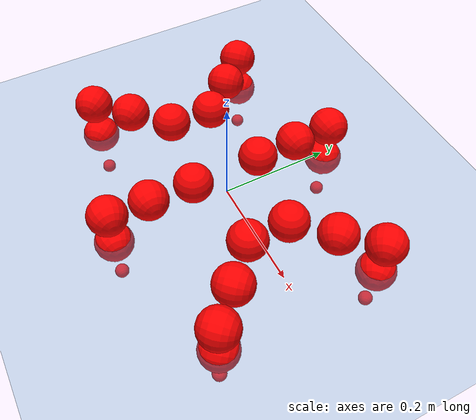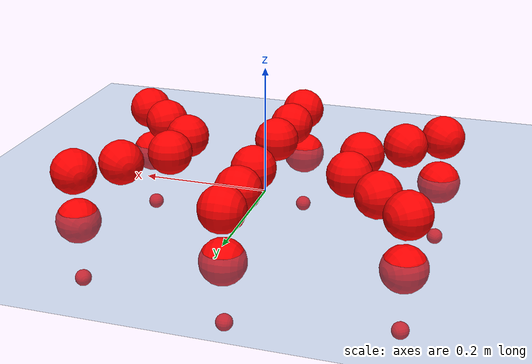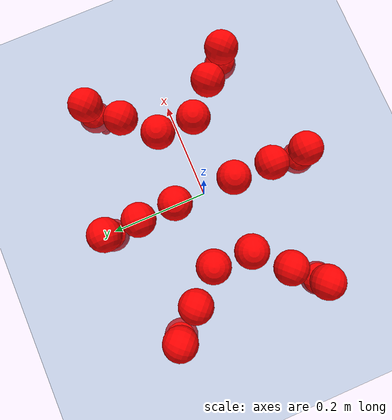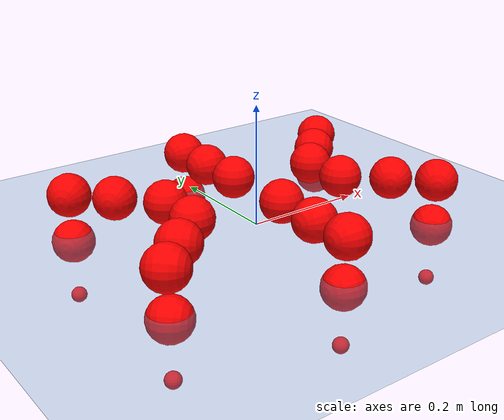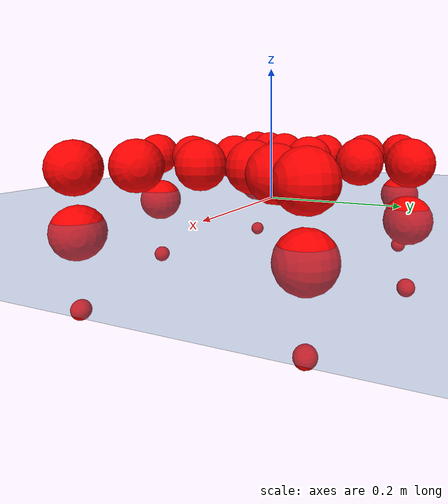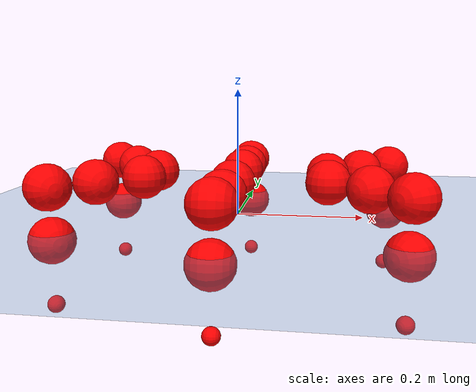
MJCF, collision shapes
<mujoco model="Golem">
  <compiler angle="radian" assetdir="assets" balanceinertia="true" inertiafromgeom="false"/>

  <option timestep="0.005" density="1.2" viscosity="2e-05"/>

  <size nkey="1"/>

  <visual>
    <quality shadowsize="8192"/>
    <map shadowclip="0.5"/>
  </visual>

  <default>
    <default class="/">
      <joint armature="0.01" damping="0.01" frictionloss="0.01"/>
      <geom contype="0" conaffinity="0" group="1" solref="-1000 -80"/>
      <site size="0.01 0.005 0.005" group="5"/>
      <general forcelimited="true" biastype="affine" gainprm="25" biasprm="0 -25 -0.5"/>
      <default class="visual">
        <geom type="mesh" group="2"/>
      </default>
      <default class="collision">
        <geom group="3"/>
      </default>
      <default class="foot">
        <geom size="0.01 0 0" condim="6" group="4" priority="1" solimp="0.015 1 0.01"/>
      </default>
      <default class="reward_collision_sphere">
        <geom group="5" rgba="1 0 0 1"/>
      </default>
    </default>
  </default>

  <asset>
    <texture type="skybox" colorspace="auto" name="//unnamed_texture_0" builtin="gradient" rgb1="0.95 0.95 0.95" rgb2="0.95 0.95 0.95" width="100" height="600"/>
    <texture type="2d" colorspace="auto" name="texplane" builtin="checker" rgb1="0.345 0.575 0.748" rgb2="0.345 0.575 0.748" markrgb="1 1 1" width="512" height="512"/>
    <material name="MatPlane" class="/" texture="texplane" texuniform="true" texrepeat="2 2" specular="0.9"/>
    <mesh name="body" class="/" file="body.stl" scale="0.001 0.001 0.001"/>
    <mesh name="coxa" class="/" file="coxa.stl" scale="0.001 0.001 0.001"/>
    <mesh name="femur" class="/" file="femur.stl" scale="0.001 0.001 0.001"/>
    <mesh name="tibia" class="/" file="tibia.stl" scale="0.001 0.001 0.001"/>
    <mesh name="tarsus" class="/" file="tarsus.stl" scale="0.001 0.001 0.001"/>
  </asset>

  <worldbody>
    <geom name="floor" class="/" size="100 100 0.125" type="plane" group="0" material="MatPlane"/>
    <light name="toplight_shadow" class="/" pos="0 0 5" dir="0.0990148 0.0990148 -0.990148" type="directional" ambient="0.04 0.04 0.04" diffuse="0.55 0.55 0.55" specular="0.12 0.12 0.12"/>
    <light name="toplight_fill" class="/" pos="0 0 5" dir="0.0990148 0.0990148 -0.990148" type="directional" castshadow="false" ambient="0.04 0.04 0.04" diffuse="0.3 0.3 0.3" specular="0.08 0.08 0.08"/>
    <body name="trunk" pos="4.0148e-05 -8.59884e-05 -0.00157383" quat="1 -5.17643e-05 -0.000291774 0.000308981">
      <inertial pos="-7.19229e-05 0.000251091 -0.00468559" quat="0.999988 -0.00367336 -0.00204477 0.00250523" mass="2.48706" diaginertia="0.00655407 0.00156035 0.0103771"/>
      <joint name="//unnamed_joint_0" type="free"/>
      <geom name="//unnamed_geom_1" class="/" pos="0 0 0.06439" quat="1 0 0 0" type="mesh" rgba="0.9 0.9 0.9 1" mesh="body"/>
      <site name="imu" class="/" pos="0.123692 -0.000234509 0.105716" size="0.00869655"/>
      <camera name="track" class="/" pos="0 -1.37339 0" quat="0.707107 0.707107 0 0" mode="trackcom"/>
      <camera name="ego_camera" class="/" pos="0.119103 0 0.100609" quat="-0.5 -0.5 0.5 0.5"/>
      <body name="coxa_RR" pos="-0.164237 -0.0582792 0.065647" quat="0.382625 -0.000459786 0.000959898 -0.923903">
        <inertial pos="-0.00195403 0.000307909 0.00115886" quat="0.999985 -0.00418123 -0.00196251 0.00294224" mass="0.130221" diaginertia="0.00648679 0.00154054 0.0100759"/>
        <joint name="coxa_joint_RR" class="/" pos="0 0 0" axis="-4.13386e-05 -0.000102065 -1" range="-3.12154 3.13903" armature="0.00903442" damping="0.00942899" frictionloss="0.00918081"/>
        <geom name="//unnamed_geom_2" class="/" type="mesh" rgba="0.2 0.2 0.2 1" mesh="coxa"/>
        <geom name="//unnamed_geom_3" class="reward_collision_sphere" size="0.0347862" pos="-0.0274853 0 0"/>
        <body name="femur_RR" pos="0.0534446 -0.00064203 0.000392499" quat="0.500018 -0.500009 0.499978 0.499995">
          <inertial pos="-0.000593563 0.000769954 0.00146997" quat="1 -0.000333229 -0.000130005 0.00017908" mass="0.131984" diaginertia="0.00648278 0.0015311 0.0101049"/>
          <joint name="femur_joint_RR" class="/" pos="0 0 0" axis="-0.00355723 -0.00229893 -0.999991" stiffness="0.00124046" range="-3.15562 3.14144" armature="0.00903738" damping="0.00481955" frictionloss="0.00908489"/>
          <geom name="//unnamed_geom_4" class="/" type="mesh" rgba="0.9 0.9 0.9 1" mesh="femur"/>
          <geom name="//unnamed_geom_5" class="reward_collision_sphere" size="0.0347862"/>
          <body name="tibia_RR" pos="-0.000204204 -0.0740856 0.00101185" quat="1.26745e-05 1 -4.92173e-06 -4.38698e-06">
            <inertial pos="0.000845403 0.00143271 -0.00156175" quat="0.999982 0.00430644 0.00342991 0.00218795" mass="0.131975" diaginertia="0.00643788 0.00153733 0.010398"/>
            <joint name="tibia_joint_RR" class="/" pos="0 0 0" axis="-0.000375957 0.000729015 1" range="-3.13914 3.13411" armature="0.00877419" damping="0" frictionloss="0.00888503"/>
            <geom name="//unnamed_geom_6" class="/" type="mesh" rgba="0.2 0.2 0.2 1" mesh="tibia"/>
            <geom name="//unnamed_geom_7" class="reward_collision_sphere" size="0.0347862"/>
            <body name="tarsus_RR" pos="0.0786149 -0.00160885 -0.00119161" quat="1 0.000198184 -0.000478454 -0.000524674">
              <inertial pos="0.0532062 -0.00139208 -0.000889923" quat="0.499405 0.500798 0.499875 0.499921" mass="0.128273" diaginertia="0.00647592 0.00153327 0.0102302"/>
              <joint name="tarsus_joint_RR" class="/" pos="0 0 0" axis="-6.26e-05 -0.000166672 1" range="-3.14179 3.12774" armature="0.00870673" damping="0" frictionloss="0.00862017"/>
              <geom name="//unnamed_geom_8" class="/" type="mesh" rgba="0.9 0.9 0.9 1" mesh="tarsus"/>
              <geom name="foot_1" class="foot" size="0.00850189" pos="0.102612 0 0" quat="0 -0.707107 0 0.707107"/>
              <geom name="//unnamed_geom_10" class="reward_collision_sphere" size="0.0347862"/>
              <geom name="//unnamed_geom_11" class="reward_collision_sphere" size="0.0130448" pos="0.0984889 0 0"/>
              <site name="foot_1" class="foot" pos="0.102612 0 0" quat="0 -0.707107 0 0.707107" size="0.00869655"/>
            </body>
          </body>
        </body>
      </body>
      <body name="coxa_RM" pos="0.000992788 -0.0918717 0.0648162" quat="0.706865 0.000200262 -0.00012363 -0.707348">
        <inertial pos="0.000221987 0.000381667 -0.0017667" quat="0.999992 0.00183677 -0.00208229 0.00303613" mass="0.131195" diaginertia="0.00638511 0.00149634 0.0101298"/>
        <joint name="coxa_joint_RM" class="/" pos="0 0 0" axis="-0.000532265 -0.000996747 -0.999999" range="-3.14238 3.13349" armature="0.00901626" damping="0.0115813" frictionloss="0.00858953"/>
        <geom name="//unnamed_geom_12" class="/" type="mesh" rgba="0.2 0.2 0.2 1" mesh="coxa"/>
        <geom name="//unnamed_geom_13" class="reward_collision_sphere" size="0.0347862" pos="-0.0274853 0 0"/>
        <body name="femur_RM" pos="0.0534007 -0.00199195 -0.00128143" quat="0.499555 -0.500718 0.499507 0.500219">
          <inertial pos="0.000266626 -2.40055e-05 -0.000154681" quat="0.999963 0.00835257 0.00107212 -0.00173732" mass="0.130487" diaginertia="0.0065712 0.00154732 0.0103069"/>
          <joint name="femur_joint_RM" class="/" pos="0 0 0" axis="0.00396817 -0.00281045 -0.999988" range="-3.15841 3.1584" armature="0.00950617" damping="0.0176406" frictionloss="0.00864636"/>
          <geom name="//unnamed_geom_14" class="/" type="mesh" rgba="0.9 0.9 0.9 1" mesh="femur"/>
          <geom name="//unnamed_geom_15" class="reward_collision_sphere" size="0.0347862"/>
          <body name="tibia_RM" pos="-0.00185089 -0.0726477 -0.000762501" quat="-8.28767e-07 1 -3.95937e-06 4.61703e-06">
            <inertial pos="0.00100816 0.000154922 -0.00126756" quat="0.999992 0.00284901 0.0017944 -0.00225493" mass="0.127674" diaginertia="0.006298 0.00150921 0.0103629"/>
            <joint name="tibia_joint_RM" class="/" pos="0 0 0" axis="0.00197136 0.000157624 0.999998" range="-3.15597 3.11939" armature="0.00833108" damping="0" frictionloss="0.00911712"/>
            <geom name="//unnamed_geom_16" class="/" type="mesh" rgba="0.2 0.2 0.2 1" mesh="tibia"/>
            <geom name="//unnamed_geom_17" class="reward_collision_sphere" size="0.0347862"/>
            <body name="tarsus_RM" pos="0.0808511 -0.000848069 0.00253233" quat="1 0.000151194 -0.000133937 0.000400305">
              <inertial pos="0.0560068 3.82337e-05 0.00125041" quat="0.500551 0.501085 0.498645 0.499716" mass="0.131315" diaginertia="0.00646826 0.00152627 0.0103416"/>
              <joint name="tarsus_joint_RM" class="/" pos="0 0 0" axis="5.01745e-06 -0.000297296 1" range="-3.12972 3.18225" armature="0.00870388" damping="0" frictionloss="0.0087217"/>
              <geom name="//unnamed_geom_18" class="/" type="mesh" rgba="0.9 0.9 0.9 1" mesh="tarsus"/>
              <geom name="foot_2" class="foot" size="0.00829952" pos="0.102612 0 0" quat="0 -0.707107 0 0.707107"/>
              <geom name="//unnamed_geom_20" class="reward_collision_sphere" size="0.0347862"/>
              <geom name="//unnamed_geom_21" class="reward_collision_sphere" size="0.0130448" pos="0.0984889 0 0"/>
              <site name="foot_2" class="foot" pos="0.102612 0 0" quat="0 -0.707107 0 0.707107" size="0.00869655"/>
            </body>
          </body>
        </body>
      </body>
      <body name="coxa_RF" pos="0.163352 -0.0575187 0.0639592" quat="0.923727 -0.000703231 -2.60087e-05 -0.383051">
        <inertial pos="0.00159261 -0.00124677 0.000363302" quat="0.999998 0.00167863 0.000910176 -0.000449125" mass="0.131359" diaginertia="0.00655826 0.00151985 0.0103729"/>
        <joint name="coxa_joint_RF" class="/" pos="0 0 0" axis="0.00142498 -0.00188677 -0.999997" stiffness="0.000265634" range="-3.14024 3.13569" armature="0.00877085" damping="0" frictionloss="0.00913074"/>
        <geom name="//unnamed_geom_22" class="/" type="mesh" rgba="0.2 0.2 0.2 1" mesh="coxa"/>
        <geom name="//unnamed_geom_23" class="reward_collision_sphere" size="0.0347862" pos="-0.0274853 0 0"/>
        <body name="femur_RF" pos="0.0546174 0.00201663 0.00140561" quat="0.500804 -0.499822 0.500187 0.499186">
          <inertial pos="0.000526701 -0.000694235 0.00105112" quat="0.999997 0.000350749 -0.00245262 0.000536619" mass="0.132863" diaginertia="0.00652959 0.00155262 0.0103699"/>
          <joint name="femur_joint_RF" class="/" pos="0 0 0" axis="0.00352112 -0.00245708 -0.999991" range="-3.15519 3.12642" armature="0.0085315" damping="0.0115034" frictionloss="0.00871649"/>
          <geom name="//unnamed_geom_24" class="/" type="mesh" rgba="0.9 0.9 0.9 1" mesh="femur"/>
          <geom name="//unnamed_geom_25" class="reward_collision_sphere" size="0.0347862"/>
          <body name="tibia_RF" pos="0.000342682 -0.0737693 0.000496767" quat="-6.99938e-05 1 -0.000110982 -2.5398e-05">
            <inertial pos="-0.000720047 -0.000549996 -0.000142027" quat="0.999988 -0.00375223 0.000455615 0.00310415" mass="0.126596" diaginertia="0.00627215 0.00148598 0.0102293"/>
            <joint name="tibia_joint_RF" class="/" pos="0 0 0" axis="-0.000231164 -0.00123205 0.999999" range="-3.13084 3.11904" armature="0.00868716" damping="0" frictionloss="0.00867504"/>
            <geom name="//unnamed_geom_26" class="/" type="mesh" rgba="0.2 0.2 0.2 1" mesh="tibia"/>
            <geom name="//unnamed_geom_27" class="reward_collision_sphere" size="0.0347862"/>
            <body name="tarsus_RF" pos="0.0799442 -0.00187843 0.000810938" quat="1 4.95925e-06 -7.02233e-07 -1.0661e-05">
              <inertial pos="0.0546357 0.000455727 -0.000515863" quat="0.500193 0.500273 0.499965 0.49957" mass="0.132235" diaginertia="0.00640339 0.00156019 0.0103584"/>
              <joint name="tarsus_joint_RF" class="/" pos="0 0 0" axis="-1.16095e-05 -6.9617e-06 1" range="-3.13454 3.14447" armature="0.00860861" damping="0" frictionloss="0.00853956"/>
              <geom name="//unnamed_geom_28" class="/" type="mesh" rgba="0.9 0.9 0.9 1" mesh="tarsus"/>
              <geom name="foot_3" class="foot" size="0.00870032" pos="0.102612 0 0" quat="0 -0.707107 0 0.707107"/>
              <geom name="//unnamed_geom_30" class="reward_collision_sphere" size="0.0347862"/>
              <geom name="//unnamed_geom_31" class="reward_collision_sphere" size="0.0130448" pos="0.0984889 0 0"/>
              <site name="foot_3" class="foot" pos="0.102612 0 0" quat="0 -0.707107 0 0.707107" size="0.00869655"/>
            </body>
          </body>
        </body>
      </body>
      <body name="coxa_LR" pos="-0.162119 0.0597665 0.0639544" quat="0.382767 0.000332231 0.000193454 0.923845">
        <inertial pos="-0.000149604 0.000826296 -7.21007e-05" quat="1 -0.00052649 -0.000636799 -0.000417444" mass="0.129956" diaginertia="0.00630399 0.00150279 0.0100081"/>
        <joint name="coxa_joint_LR" class="/" pos="0 0 0" axis="-0.00126341 -0.000480454 -0.999999" range="-3.13622 3.13387" armature="0.0083087" damping="0.0111564" frictionloss="0.00893166"/>
        <geom name="//unnamed_geom_32" class="/" type="mesh" rgba="0.2 0.2 0.2 1" mesh="coxa"/>
        <geom name="//unnamed_geom_33" class="reward_collision_sphere" size="0.0347862" pos="-0.0274853 0 0"/>
        <body name="femur_LR" pos="0.0545671 -0.00334135 -0.00016312" quat="0.500048 -0.499993 0.499957 0.500002">
          <inertial pos="-0.000713054 0.000764096 -0.00207595" quat="0.999993 -0.000323092 -0.00145696 0.00332542" mass="0.128138" diaginertia="0.00633751 0.00149997 0.0101681"/>
          <joint name="femur_joint_LR" class="/" pos="0 0 0" axis="0.00744521 -0.00633831 0.999952" range="-3.13658 3.14095" armature="0.00857106" damping="0.00548206" frictionloss="0.00851958"/>
          <geom name="//unnamed_geom_34" class="/" type="mesh" rgba="0.9 0.9 0.9 1" mesh="femur"/>
          <geom name="//unnamed_geom_35" class="reward_collision_sphere" size="0.0347862"/>
          <body name="tibia_LR" pos="0.00016361 -0.0744106 -0.00137994" quat="0.000164985 1 -3.73898e-05 0.000153277">
            <inertial pos="-0.000776966 0.00137497 -0.000383805" quat="0.999998 0.00120832 0.000565029 -0.00139564" mass="0.130599" diaginertia="0.00629563 0.00152326 0.0103769"/>
            <joint name="tibia_joint_LR" class="/" pos="0 0 0" axis="-0.00599993 -0.00759839 -0.999953" range="-3.12396 3.09496" armature="0.00963698" damping="0" frictionloss="0.008704"/>
            <geom name="//unnamed_geom_36" class="/" type="mesh" rgba="0.2 0.2 0.2 1" mesh="tibia"/>
            <geom name="//unnamed_geom_37" class="reward_collision_sphere" size="0.0347862"/>
            <body name="tarsus_LR" pos="0.0809578 0.000987805 0.00218588" quat="1 -0.000146949 -0.000290646 -8.30958e-06">
              <inertial pos="0.0572524 2.80552e-07 -0.00207628" quat="0.500145 0.500017 0.499942 0.499896" mass="0.132556" diaginertia="0.00647041 0.0015316 0.0103575"/>
              <joint name="tarsus_joint_LR" class="/" pos="0 0 0" axis="-0.00105844 -0.00125674 -0.999999" range="-3.14662 3.15097" armature="0.0085533" damping="0.00457085" frictionloss="0.00874424"/>
              <geom name="//unnamed_geom_38" class="/" type="mesh" rgba="0.9 0.9 0.9 1" mesh="tarsus"/>
              <geom name="foot_4" class="foot" size="0.00852545" pos="0.102612 0 0" quat="0.707107 0 -0.707107 0"/>
              <geom name="//unnamed_geom_40" class="reward_collision_sphere" size="0.0347862"/>
              <geom name="//unnamed_geom_41" class="reward_collision_sphere" size="0.0130448" pos="0.0984889 0 0"/>
              <site name="foot_4" class="foot" pos="0.102612 0 0" quat="0.707107 0 -0.707107 0" size="0.00869655"/>
            </body>
          </body>
        </body>
      </body>
      <body name="coxa_LM" pos="-0.000886868 0.0891609 0.0646668" quat="0.707144 0.000180903 -5.99087e-05 0.70707">
        <inertial pos="0.00029067 -0.00148202 0.00238193" quat="0.999991 0.00179957 0.00377486 -0.000365074" mass="0.131463" diaginertia="0.00656176 0.00153404 0.0103688"/>
        <joint name="coxa_joint_LM" class="/" pos="0 0 0" axis="-0.00306858 0.00353039 -0.999989" range="-3.14508 3.15785" armature="0.00788921" damping="0.00662911" frictionloss="0.0087182"/>
        <geom name="//unnamed_geom_42" class="/" type="mesh" rgba="0.2 0.2 0.2 1" mesh="coxa"/>
        <geom name="//unnamed_geom_43" class="reward_collision_sphere" size="0.0347862" pos="-0.0274853 0 0"/>
        <body name="femur_LM" pos="0.0500615 0.00201937 -0.00162752" quat="0.499974 -0.500022 0.50001 0.499994">
          <inertial pos="-0.0019773 -0.000573012 0.000120935" quat="0.999999 0.00110502 -0.001156 0.000175664" mass="0.127341" diaginertia="0.00639487 0.00148555 0.0100335"/>
          <joint name="femur_joint_LM" class="/" pos="0 0 0" axis="-0.00277859 0.00892303 0.999956" range="-3.14293 3.14098" armature="0.00866829" damping="0.00793433" frictionloss="0.0089746"/>
          <geom name="//unnamed_geom_44" class="/" type="mesh" rgba="0.9 0.9 0.9 1" mesh="femur"/>
          <geom name="//unnamed_geom_45" class="reward_collision_sphere" size="0.0347862"/>
          <body name="tibia_LM" pos="-0.000654695 -0.071692 0.00114599" quat="0.00027522 1 0.0001125 0.000272671">
            <inertial pos="-0.000459753 6.1475e-05 0.000387867" quat="0.999995 -0.00185764 -0.0026485 0.000110024" mass="0.127791" diaginertia="0.0063885 0.00151428 0.0101199"/>
            <joint name="tibia_joint_LM" class="/" pos="0 0 0" axis="-0.00144394 0.00199928 -0.999997" range="-3.12966 3.16464" armature="0.00854051" damping="0.00644019" frictionloss="0.00828591"/>
            <geom name="//unnamed_geom_46" class="/" type="mesh" rgba="0.2 0.2 0.2 1" mesh="tibia"/>
            <geom name="//unnamed_geom_47" class="reward_collision_sphere" size="0.0347862"/>
            <body name="tarsus_LM" pos="0.0811023 -0.000903234 0.000397047" quat="1 -6.0298e-05 -2.87167e-05 -3.9353e-05">
              <inertial pos="0.0567502 0.000436131 0.000898607" quat="0.49975 0.500048 0.500048 0.500153" mass="0.130987" diaginertia="0.00652952 0.00154207 0.0102978"/>
              <joint name="tarsus_joint_LM" class="/" pos="0 0 0" axis="-0.000358583 -0.00212621 -0.999998" range="-3.14539 3.13978" armature="0.008542" damping="0" frictionloss="0.00899572"/>
              <geom name="//unnamed_geom_48" class="/" type="mesh" rgba="0.9 0.9 0.9 1" mesh="tarsus"/>
              <geom name="foot_5" class="foot" size="0.00877915" pos="0.102612 0 0" quat="0.707107 0 -0.707107 0"/>
              <geom name="//unnamed_geom_50" class="reward_collision_sphere" size="0.0347862"/>
              <geom name="//unnamed_geom_51" class="reward_collision_sphere" size="0.0130448" pos="0.0984889 0 0"/>
              <site name="foot_5" class="foot" pos="0.102612 0 0" quat="0.707107 0 -0.707107 0" size="0.00869655"/>
            </body>
          </body>
        </body>
      </body>
      <body name="coxa_LF" pos="0.16253 0.0580106 0.0641485" quat="0.923864 0.000204022 8.36136e-05 0.38272">
        <inertial pos="0.000776031 -0.000390096 -0.0008185" quat="0.999967 0.000561195 0.0026472 -0.00760706" mass="0.131791" diaginertia="0.00663575 0.00151872 0.0103084"/>
        <joint name="coxa_joint_LF" class="/" pos="0 0 0" axis="0.0010922 -0.0030392 -0.999995" range="-3.13233 3.11279" armature="0.00897523" damping="0.0085392" frictionloss="0.00849033"/>
        <geom name="//unnamed_geom_52" class="/" type="mesh" rgba="0.2 0.2 0.2 1" mesh="coxa"/>
        <geom name="//unnamed_geom_53" class="reward_collision_sphere" size="0.0347862" pos="-0.0274853 0 0"/>
        <body name="femur_LF" pos="0.0531065 0.000782669 -0.00108775" quat="0.499987 -0.499946 0.50032 0.499747">
          <inertial pos="-0.00096531 -8.22084e-06 0.000330539" quat="0.999988 0.00458432 -3.98002e-05 -0.001912" mass="0.132924" diaginertia="0.00638002 0.00153469 0.0103107"/>
          <joint name="femur_joint_LF" class="/" pos="0 0 0" axis="-0.00215783 0.00881498 0.999959" range="-3.16711 3.14594" armature="0.00864084" damping="0" frictionloss="0.00870891"/>
          <geom name="//unnamed_geom_54" class="/" type="mesh" rgba="0.9 0.9 0.9 1" mesh="femur"/>
          <geom name="//unnamed_geom_55" class="reward_collision_sphere" size="0.0347862"/>
          <body name="tibia_LF" pos="-0.000590372 -0.0755975 0.00223829" quat="-0.000102798 1 -1.43023e-05 -9.85393e-05">
            <inertial pos="-0.000899042 -9.71886e-05 -0.000361875" quat="0.999941 0.0059254 -0.00514791 0.0075007" mass="0.134492" diaginertia="0.00645707 0.00153621 0.0104288"/>
            <joint name="tibia_joint_LF" class="/" pos="0 0 0" axis="-0.00149964 0.00245361 -0.999996" range="-3.13871 3.12007" armature="0.00867407" damping="0.00174109" frictionloss="0.00863994"/>
            <geom name="//unnamed_geom_56" class="/" type="mesh" rgba="0.2 0.2 0.2 1" mesh="tibia"/>
            <geom name="//unnamed_geom_57" class="reward_collision_sphere" size="0.0347862"/>
            <body name="tarsus_LF" pos="0.0810299 -0.00100502 -0.000662813" quat="1 0.000156041 -2.43619e-05 -0.000124477">
              <inertial pos="0.055672 0.00136951 -0.000676712" quat="0.498135 0.500348 0.501568 0.499943" mass="0.126663" diaginertia="0.00633437 0.00149373 0.0100309"/>
              <joint name="tarsus_joint_LF" class="/" pos="0 0 0" axis="-0.00343489 5.29915e-05 -0.999994" range="-3.12655 3.12361" armature="0.0090255" damping="0.0150644" frictionloss="0.00864859"/>
              <geom name="//unnamed_geom_58" class="/" type="mesh" rgba="0.9 0.9 0.9 1" mesh="tarsus"/>
              <geom name="foot_6" class="foot" size="0.00870177" pos="0.102612 0 0" quat="0.707107 0 -0.707107 0"/>
              <geom name="//unnamed_geom_60" class="reward_collision_sphere" size="0.0347862"/>
              <geom name="//unnamed_geom_61" class="reward_collision_sphere" size="0.0130448" pos="0.0984889 0 0"/>
              <site name="foot_6" class="foot" pos="0.102612 0 0" quat="0.707107 0 -0.707107 0" size="0.00869655"/>
            </body>
          </body>
        </body>
      </body>
    </body>
  </worldbody>

  <contact>
    <pair class="/" geom1="floor" geom2="foot_1" name="//unnamed_contact_0"/>
    <pair class="/" geom1="floor" geom2="foot_2" name="//unnamed_contact_1"/>
    <pair class="/" geom1="floor" geom2="foot_3" name="//unnamed_contact_2"/>
    <pair class="/" geom1="floor" geom2="foot_4" name="//unnamed_contact_3"/>
    <pair class="/" geom1="floor" geom2="foot_5" name="//unnamed_contact_4"/>
    <pair class="/" geom1="floor" geom2="foot_6" name="//unnamed_contact_5"/>
  </contact>

  <actuator>
    <general name="coxa_joint_RR" class="/" joint="coxa_joint_RR" forcerange="-6.24897 6.24897" gainprm="21.1965" biasprm="0 -21.1965 -0.453447"/>
    <general name="femur_joint_RR" class="/" joint="femur_joint_RR" forcerange="-6.2916 6.2916" gainprm="21.1965" biasprm="0 -21.1965 -0.453447"/>
    <general name="tibia_joint_RR" class="/" joint="tibia_joint_RR" forcerange="-6.07881 6.07881" gainprm="21.1965" biasprm="0 -21.1965 -0.453447"/>
    <general name="tarsus_joint_RR" class="/" joint="tarsus_joint_RR" forcerange="-6.1104 6.1104" gainprm="21.1965" biasprm="0 -21.1965 -0.453447"/>
    <general name="coxa_joint_RM" class="/" joint="coxa_joint_RM" forcerange="-6.87061 6.87061" gainprm="21.1965" biasprm="0 -21.1965 -0.453447"/>
    <general name="femur_joint_RM" class="/" joint="femur_joint_RM" forcerange="-6.28363 6.28363" gainprm="21.1965" biasprm="0 -21.1965 -0.453447"/>
    <general name="tibia_joint_RM" class="/" joint="tibia_joint_RM" forcerange="-6.1134 6.1134" gainprm="21.1965" biasprm="0 -21.1965 -0.453447"/>
    <general name="tarsus_joint_RM" class="/" joint="tarsus_joint_RM" forcerange="-6.07234 6.07234" gainprm="21.1965" biasprm="0 -21.1965 -0.453447"/>
    <general name="coxa_joint_RF" class="/" joint="coxa_joint_RF" forcerange="-6.54577 6.54577" gainprm="21.1965" biasprm="0 -21.1965 -0.453447"/>
    <general name="femur_joint_RF" class="/" joint="femur_joint_RF" forcerange="-6.34268 6.34268" gainprm="21.1965" biasprm="0 -21.1965 -0.453447"/>
    <general name="tibia_joint_RF" class="/" joint="tibia_joint_RF" forcerange="-6.4207 6.4207" gainprm="21.1965" biasprm="0 -21.1965 -0.453447"/>
    <general name="tarsus_joint_RF" class="/" joint="tarsus_joint_RF" forcerange="-6.35683 6.35683" gainprm="21.1965" biasprm="0 -21.1965 -0.453447"/>
    <general name="coxa_joint_LR" class="/" joint="coxa_joint_LR" forcerange="-6.72174 6.72174" gainprm="21.1965" biasprm="0 -21.1965 -0.453447"/>
    <general name="femur_joint_LR" class="/" joint="femur_joint_LR" forcerange="-6.33386 6.33386" gainprm="21.1965" biasprm="0 -21.1965 -0.453447"/>
    <general name="tibia_joint_LR" class="/" joint="tibia_joint_LR" forcerange="-6.43447 6.43447" gainprm="21.1965" biasprm="0 -21.1965 -0.453447"/>
    <general name="tarsus_joint_LR" class="/" joint="tarsus_joint_LR" forcerange="-6.77353 6.77353" gainprm="21.1965" biasprm="0 -21.1965 -0.453447"/>
    <general name="coxa_joint_LM" class="/" joint="coxa_joint_LM" forcerange="-6.1032 6.1032" gainprm="21.1965" biasprm="0 -21.1965 -0.453447"/>
    <general name="femur_joint_LM" class="/" joint="femur_joint_LM" forcerange="-6.13888 6.13888" gainprm="21.1965" biasprm="0 -21.1965 -0.453447"/>
    <general name="tibia_joint_LM" class="/" joint="tibia_joint_LM" forcerange="-6.68412 6.68412" gainprm="21.1965" biasprm="0 -21.1965 -0.453447"/>
    <general name="tarsus_joint_LM" class="/" joint="tarsus_joint_LM" forcerange="-6.85362 6.85362" gainprm="21.1965" biasprm="0 -21.1965 -0.453447"/>
    <general name="coxa_joint_LF" class="/" joint="coxa_joint_LF" forcerange="-6.28895 6.28895" gainprm="21.1965" biasprm="0 -21.1965 -0.453447"/>
    <general name="femur_joint_LF" class="/" joint="femur_joint_LF" forcerange="-6.32122 6.32122" gainprm="21.1965" biasprm="0 -21.1965 -0.453447"/>
    <general name="tibia_joint_LF" class="/" joint="tibia_joint_LF" forcerange="-6.56846 6.56846" gainprm="21.1965" biasprm="0 -21.1965 -0.453447"/>
    <general name="tarsus_joint_LF" class="/" joint="tarsus_joint_LF" forcerange="-6.55544 6.55544" gainprm="21.1965" biasprm="0 -21.1965 -0.453447"/>
  </actuator>

  <sensor>
    <gyro site="imu" name="imu_angular_velocity"/>
    <velocimeter site="imu" name="imu_linear_velocity"/>
    <framelinvel objtype="site" objname="foot_1" name="foot_1_global_linear_velocity"/>
    <framelinvel objtype="site" objname="foot_2" name="foot_2_global_linear_velocity"/>
    <framelinvel objtype="site" objname="foot_3" name="foot_3_global_linear_velocity"/>
    <framelinvel objtype="site" objname="foot_4" name="foot_4_global_linear_velocity"/>
    <framelinvel objtype="site" objname="foot_5" name="foot_5_global_linear_velocity"/>
    <framelinvel objtype="site" objname="foot_6" name="foot_6_global_linear_velocity"/>
  </sensor>

  <keyframe>
    <key name="home" qpos="0 0 0.1457 1 0 0 0 0 0 0 0 0 0 0 0 0 0 0 0 0 0 0 0 0 0 0 0 0 0 0 0"/>
  </keyframe>
</mujoco>
